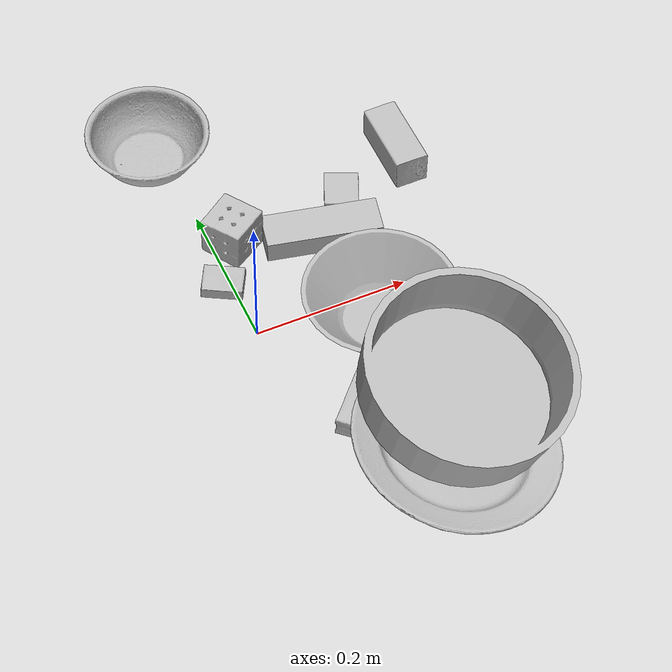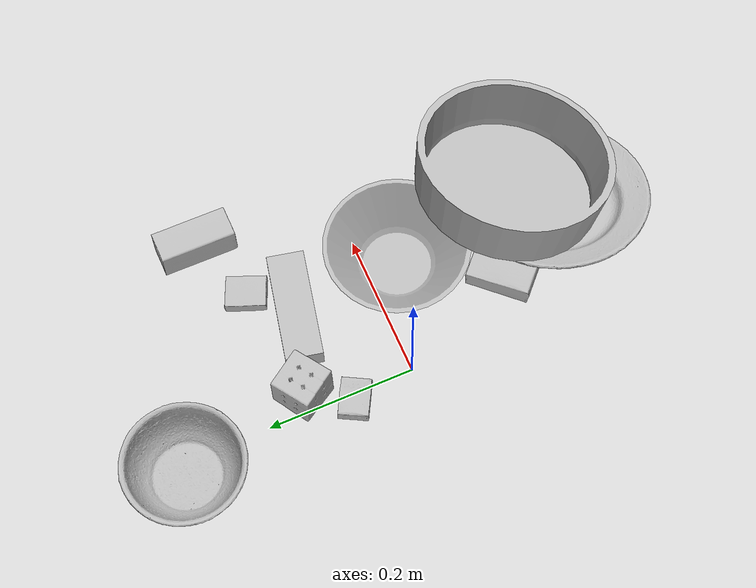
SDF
<sdf version="1.4">
  <world name="default">
    <light name="light1" type="point">
      <pose>0 0 1 0 0 0</pose>
      <diffuse>3 3 3 1</diffuse>
      <specular>3 3 3 1</specular>
    </light>
    <light name="light2" type="point">
      <pose>0 0.5 2 0 0 0</pose>
      <diffuse>1 1 1 1</diffuse>
      <specular>1 1 1 1</specular>
    </light>
    <light name="light3" type="point">
      <pose>0 0.5 2 0 0 0</pose>
      <diffuse>3 3 3 1</diffuse>
      <specular>3 3 3 1</specular>
    </light>
    <scene>
      <ambient>0.7 0.7 0.7</ambient>
    </scene>
    <model name="box1">
      <link name="link_box1">
        <collision name="default">
          <geometry>
            <mesh>
              <uri>model://rubiks_cube/collision_meshes/collision.obj</uri>
              <scale>1.0 1.0 1.0</scale>
            </mesh>
          </geometry>
          <surface>
            <friction>
              <ode>
                <mu>0.5</mu>
                <mu2>0.5</mu2>
              </ode>
            </friction>
          <contact>
        <ode>
            <max_vel>0</max_vel>
            <min_depth>0.0001</min_depth>
            <kp>1e8</kp>
        </ode>
    </contact></surface>
        </collision>
        <visual name="default">
          <geometry>
            <mesh>
              <uri>model://rubiks_cube/visual_meshes/visual.dae</uri>
              <scale>1.0 1.0 1.0</scale>
            </mesh>
          </geometry>
        </visual>
        <inertial>
          <mass>0.14937607944011688</mass>
          <pose>2.6721041649580002e-05 5.256967051536776e-05 -7.264316082000732e-06 -0.054671979216720346 -0.0981390543553378 -0.03445400726577695</pose>
          <inertia>
            <ixx>8.254031e-05</ixx>
            <iyy>8.2155384e-05</iyy>
            <izz>8.32243e-05</izz>
            <ixy>0</ixy>
            <ixz>0</ixz>
            <iyz>0</iyz>
          </inertia>
        </inertial>
      </link>
      <pose>0.02646404318511486 0.14292120933532715 0.02867896482348442 -4.76745250404558e-06 -1.7539694222388966e-06 2.159902230388019</pose>
    </model>
    <model name="box11">
      <link name="link_box11">
        <collision name="default">
          <geometry>
            <mesh>
              <uri>model://gelatin_box/collision_meshes/collision.obj</uri>
              <scale>1.0 1.0 1.0</scale>
            </mesh>
          </geometry>
          <surface>
            <friction>
              <ode>
                <mu>0.5</mu>
                <mu2>0.5</mu2>
              </ode>
            </friction>
          <contact>
        <ode>
            <max_vel>0</max_vel>
            <min_depth>0.0001</min_depth>
            <kp>1e8</kp>
        </ode>
    </contact></surface>
        </collision>
        <visual name="default">
          <geometry>
            <mesh>
              <uri>model://gelatin_box/visual_meshes/visual.dae</uri>
              <scale>1.0 1.0 1.0</scale>
            </mesh>
          </geometry>
        </visual>
        <inertial>
          <mass>0.1927502304315567</mass>
          <pose>0.0004319618456065655 0.00011156871914863586 -0.00036403213744051754 -0.0010503718519204429 -0.00475581822657324 0.016440557608202722</pose>
          <inertia>
            <ixx>0.00013606594</ixx>
            <iyy>9.7191194e-05</iyy>
            <izz>0.00020712269</izz>
            <ixy>0</ixy>
            <ixz>0</ixz>
            <iyz>0</iyz>
          </inertia>
        </inertial>
      </link>
      <pose>0.08182244002819061 -0.17048965394496918 0.015309388749301434 -0.002689513198377495 0.004875110148251134 -0.7617289036981266</pose>
    </model>
    <model name="box2">
      <link name="link_box2">
        <collision name="default">
          <geometry>
            <mesh>
              <uri>model://jenga/collision_meshes/collision.obj</uri>
              <scale>1.0 1.0 1.0</scale>
            </mesh>
          </geometry>
          <surface>
            <friction>
              <ode>
                <mu>0.5</mu>
                <mu2>0.5</mu2>
              </ode>
            </friction>
          <contact>
        <ode>
            <max_vel>0</max_vel>
            <min_depth>0.0001</min_depth>
            <kp>1e8</kp>
        </ode>
    </contact></surface>
        </collision>
        <visual name="default">
          <geometry>
            <mesh>
              <uri>model://jenga/visual_meshes/visual.dae</uri>
              <scale>1.0 1.0 1.0</scale>
            </mesh>
          </geometry>
        </visual>
        <inertial>
          <mass>0.17753760516643524</mass>
          <pose>-2.5028555228345795e-07 -0.00010250010382151231 -4.0923401684267446e-05 0.0 -7.342155186052628e-07 0.0</pose>
          <inertia>
            <ixx>4.912897e-05</ixx>
            <iyy>0.00033289654</iyy>
            <izz>0.00035539534</izz>
            <ixy>0</ixy>
            <ixz>0</ixz>
            <iyz>0</iyz>
          </inertia>
        </inertial>
      </link>
      <pose>0.1355123370885849 0.10924313217401505 0.015000003390014172 1.4747011329335873e-08 5.332913536357471e-10 2.9304053921334683</pose>
    </model>
    <model name="box21">
      <link name="link_box21">
        <collision name="default">
          <geometry>
            <mesh>
              <uri>model://cracker_box/collision_meshes/collision.obj</uri>
              <scale>0.25 0.25 0.25</scale>
            </mesh>
          </geometry>
          <surface>
            <friction>
              <ode>
                <mu>0.5</mu>
                <mu2>0.5</mu2>
              </ode>
            </friction>
          <contact>
        <ode>
            <max_vel>0</max_vel>
            <min_depth>0.0001</min_depth>
            <kp>1e8</kp>
        </ode>
    </contact></surface>
        </collision>
        <visual name="default">
          <geometry>
            <mesh>
              <uri>model://cracker_box/visual_meshes/visual.dae</uri>
              <scale>0.25 0.25 0.25</scale>
            </mesh>
          </geometry>
        </visual>
        <inertial>
          <mass>0.032025858759880066</mass>
          <pose>0.00023660347505938262 6.358561950037256e-05 -0.0004257383698131889 -0.0003162079452709603 -0.01110648960005095 0.0025467945380896087</pose>
          <inertia>
            <ixx>5.091218e-06</ixx>
            <iyy>8.406602e-06</iyy>
            <izz>1.1996991e-05</izz>
            <ixy>0</ixy>
            <ixz>0</ixz>
            <iyz>0</iyz>
          </inertia>
        </inertial>
      </link>
      <pose>-0.010071183554828167 0.08561933040618896 0.009120448492467403 -0.011788001369272893 -0.007367380839771199 2.6438660119367405</pose>
    </model>
    <model name="box3">
      <link name="link_box3">
        <collision name="default">
          <geometry>
            <mesh>
              <uri>model://wood_block/collision_meshes/collision.obj</uri>
              <scale>0.5 0.5 0.5</scale>
            </mesh>
          </geometry>
          <surface>
            <friction>
              <ode>
                <mu>0.5</mu>
                <mu2>0.5</mu2>
              </ode>
            </friction>
          <contact>
        <ode>
            <max_vel>0</max_vel>
            <min_depth>0.0001</min_depth>
            <kp>1e8</kp>
        </ode>
    </contact></surface>
        </collision>
        <visual name="default">
          <geometry>
            <mesh>
              <uri>model://wood_block/visual_meshes/visual.dae</uri>
              <scale>0.5 0.5 0.5</scale>
            </mesh>
          </geometry>
        </visual>
        <inertial>
          <mass>0.12936852872371674</mass>
          <pose>-2.9066577553749084e-06 -0.00028540470520965755 0.00013204290007706732 -0.052209755292171825 -0.0051926950820086835 -0.006861377939779924</pose>
          <inertia>
            <ixx>4.327867e-05</ixx>
            <iyy>0.00013671734</iyy>
            <izz>0.00013620593</izz>
            <ixy>0</ixy>
            <ixz>0</ixz>
            <iyz>0</iyz>
          </inertia>
        </inertial>
      </link>
      <pose>0.277957946062088 0.19539973139762878 0.02262927033007145 -0.0052085004533288706 0.0057186953800352595 -1.5657364097064488</pose>
    </model>
    <model name="box31">
      <link name="link_box31">
        <collision name="default">
          <geometry>
            <mesh>
              <uri>model://pudding_box/collision_meshes/collision.obj</uri>
              <scale>0.5 0.5 0.5</scale>
            </mesh>
          </geometry>
          <surface>
            <friction>
              <ode>
                <mu>0.5</mu>
                <mu2>0.5</mu2>
              </ode>
            </friction>
          <contact>
        <ode>
            <max_vel>0</max_vel>
            <min_depth>0.0001</min_depth>
            <kp>1e8</kp>
        </ode>
    </contact></surface>
        </collision>
        <visual name="default">
          <geometry>
            <mesh>
              <uri>model://pudding_box/visual_meshes/visual.dae</uri>
              <scale>0.5 0.5 0.5</scale>
            </mesh>
          </geometry>
        </visual>
        <inertial>
          <mass>0.02777985855937004</mass>
          <pose>0.00024474109522998333 0.00040339428232982755 -0.0002594413817860186 0.005213100847255284 -0.006603800106148706 0.020079825159203687</pose>
          <inertia>
            <ixx>7.850925e-06</ixx>
            <iyy>5.282159e-06</iyy>
            <izz>1.1593943e-05</izz>
            <ixy>0</ixy>
            <ixz>0</ixz>
            <iyz>0</iyz>
          </inertia>
        </inertial>
      </link>
      <pose>0.18484345078468323 0.15955670177936554 0.009862905368208885 0.02234844454130428 -0.011391758260901224 2.734282690882402</pose>
    </model>
    <model name="plate1">
      <link name="link_plate1">
        <collision name="default">
          <geometry>
            <mesh>
              <uri>model://plate/collision_meshes/collision.obj</uri>
              <scale>1.0 1.0 1.0</scale>
            </mesh>
          </geometry>
          <surface>
            <friction>
              <ode>
                <mu>0.5</mu>
                <mu2>0.5</mu2>
              </ode>
            </friction>
          <contact>
        <ode>
            <max_vel>0</max_vel>
            <min_depth>0.0001</min_depth>
            <kp>1e8</kp>
        </ode>
    </contact></surface>
        </collision>
        <visual name="default">
          <geometry>
            <mesh>
              <uri>model://plate/visual_meshes/visual.dae</uri>
              <scale>1.0 1.0 1.0</scale>
            </mesh>
          </geometry>
        </visual>
        <inertial>
          <mass>0.18243028223514557</mass>
          <pose>-0.0006044635083526373 0.00027825916185975075 -0.0010561967501416802 0.002218802985991306 -0.003225472580220492 0.4526054178664253</pose>
          <inertia>
            <ixx>0.00085341244</ixx>
            <iyy>0.00084524986</iyy>
            <izz>0.0016691468</izz>
            <ixy>0</ixy>
            <ixz>0</ixz>
            <iyz>0</iyz>
          </inertia>
        </inertial>
      </link>
      <pose>0.1418347805738449 -0.26960110664367676 0.029975054785609245 0.12745348735906856 0.17365089043181098 0.27337117258539984</pose>
    </model>
    <model name="bowl1">
      <link name="link_bowl1">
        <collision name="default">
          <geometry>
            <mesh>
              <uri>model://bowl_a/collision_meshes/collision.obj</uri>
              <scale>1.0 1.0 1.0</scale>
            </mesh>
          </geometry>
          <surface>
            <friction>
              <ode>
                <mu>0.5</mu>
                <mu2>0.5</mu2>
              </ode>
            </friction>
          <contact>
        <ode>
            <max_vel>0</max_vel>
            <min_depth>0.0001</min_depth>
            <kp>1e8</kp>
        </ode>
    </contact></surface>
        </collision>
        <visual name="default">
          <geometry>
            <mesh>
              <uri>model://bowl_a/visual_meshes/visual.dae</uri>
              <scale>1.0 1.0 1.0</scale>
            </mesh>
          </geometry>
        </visual>
        <inertial>
          <mass>0.33530884981155396</mass>
          <pose>0.00027867525932379067 4.7312179958680645e-05 -0.0013765293406322598 -0.0009805353119733814 -0.0010938238033148682 -0.19123781325276382</pose>
          <inertia>
            <ixx>0.0009546399</ixx>
            <iyy>0.0009605007</iyy>
            <izz>0.0016978635</izz>
            <ixy>0</ixy>
            <ixz>0</ixz>
            <iyz>0</iyz>
          </inertia>
        </inertial>
      </link>
      <pose>0.147576242685318 -0.0424671433866024 0.03038601391017437 -4.464247481949136e-05 5.3977733665889565e-05 -1.0389534433537508</pose>
    </model>
    <model name="plate2">
      <link name="link_plate2">
        <collision name="default">
          <geometry>
            <mesh>
              <uri>model://pan_tefal/collision_meshes/collision.obj</uri>
              <scale>1.0 1.0 1.0</scale>
            </mesh>
          </geometry>
          <surface>
            <friction>
              <ode>
                <mu>0.5</mu>
                <mu2>0.5</mu2>
              </ode>
            </friction>
          <contact>
        <ode>
            <max_vel>0</max_vel>
            <min_depth>0.0001</min_depth>
            <kp>1e8</kp>
        </ode>
    </contact></surface>
        </collision>
        <visual name="default">
          <geometry>
            <mesh>
              <uri>model://pan_tefal/visual_meshes/visual.dae</uri>
              <scale>1.0 1.0 1.0</scale>
            </mesh>
          </geometry>
        </visual>
        <inertial>
          <mass>1.3054066896438599</mass>
          <pose>-0.00018001779972109944 3.2791245757834986e-05 -0.008514936082065105 0.0008190347553724757 -0.0003301394488099971 -0.33186691456643896</pose>
          <inertia>
            <ixx>0.00901116</ixx>
            <iyy>0.009069256</iyy>
            <izz>0.016587809</izz>
            <ixy>0</ixy>
            <ixz>0</ixz>
            <iyz>0</iyz>
          </inertia>
        </inertial>
      </link>
      <pose>0.17575320601463318 -0.22042906284332275 0.08161219954490662 0.054828767360477725 -0.25334110626683565 1.899958849697471</pose>
    </model>
    <model name="bowl2">
      <link name="link_bowl2">
        <collision name="default">
          <geometry>
            <mesh>
              <uri>model://bowl/collision_meshes/collision.obj</uri>
              <scale>1.0 1.0 1.0</scale>
            </mesh>
          </geometry>
          <surface>
            <friction>
              <ode>
                <mu>0.5</mu>
                <mu2>0.5</mu2>
              </ode>
            </friction>
          <contact>
        <ode>
            <max_vel>0</max_vel>
            <min_depth>0.0001</min_depth>
            <kp>1e8</kp>
        </ode>
    </contact></surface>
        </collision>
        <visual name="default">
          <geometry>
            <mesh>
              <uri>model://bowl/visual_meshes/visual.dae</uri>
              <scale>1.0 1.0 1.0</scale>
            </mesh>
          </geometry>
        </visual>
        <inertial>
          <mass>0.1096961572766304</mass>
          <pose>0.00020445209520403296 -0.0010302049340680242 -0.0008042648551054299 -0.015764066902751193 0.014546817497496476 0.7140421604823016</pose>
          <inertia>
            <ixx>0.00025198064</ixx>
            <iyy>0.00024635042</iyy>
            <izz>0.0004239182</izz>
            <ixy>0</ixy>
            <ixz>0</ixz>
            <iyz>0</iyz>
          </inertia>
        </inertial>
      </link>
      <pose>-0.018439842388033867 0.3188193440437317 0.02778000757098198 1.8218248937218465e-08 -1.4234011380470314e-08 2.2898017536523554</pose>
    </model>
  <physics type="ode">
      <max_contacts>50</max_contacts>
      <ode>
        <solver>
          <type>quick</type>
          <iters>75</iters>
        </solver>
        <constraints>
          <contact_max_correcting_vel>0</contact_max_correcting_vel>
          <contact_surface_layer>0</contact_surface_layer>
        </constraints>
      </ode>
    </physics></world>
</sdf>
